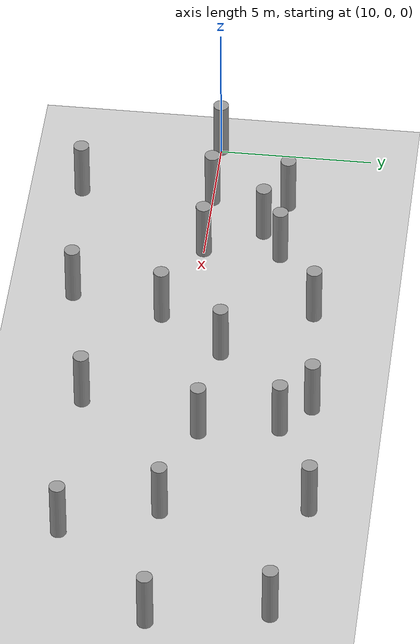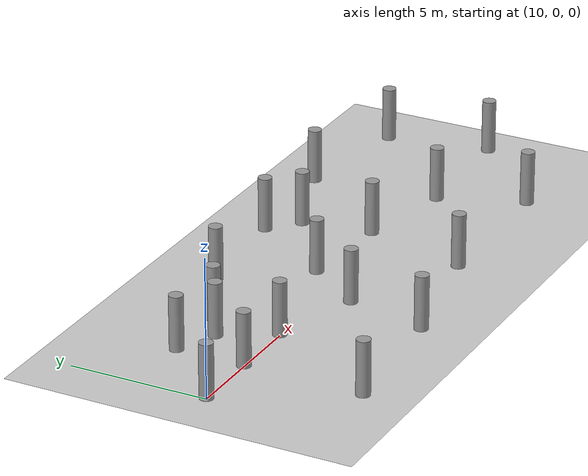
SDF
<sdf version="1.6">
 <world name="default">
  <model name="ground_plane">
   <static>1</static>
   <link name="link">
    <collision name="collision">
     <geometry><plane><normal>0 0 1</normal><size>100 100</size></plane></geometry>
     <surface><friction><ode><mu>100</mu><mu2>50</mu2></ode></friction></surface>
    </collision>
    <visual name="visual">
     <cast_shadows>0</cast_shadows>
     <geometry><plane><normal>0 0 1</normal><size>100 100</size></plane></geometry>
     <material>
      <script><uri>file://media/materials/scripts/gazebo.material</uri><name>Gazebo/Grey</name></script>
     </material>
    </visual>
   </link>
  </model>
  <model name="vps_sim_obstacle_3">
   <link name="link">
    <inertial>
     <mass>1</mass>
     <inertia><ixx>0.145833</ixx><ixy>0</ixy><ixz>0</ixz><iyy>0.145833</iyy><iyz>0</iyz><izz>0.125</izz></inertia>
    </inertial>
    <visual name="visual">
     <geometry><cylinder><radius>0.25</radius><length>2</length></cylinder></geometry>
     <material>
      <script><name>Gazebo/Grey</name><uri>file://media/materials/scripts/gazebo.material</uri></script>
      <ambient>0.3 0.3 0.3 1</ambient>
      <diffuse>0.7 0.7 0.7 1</diffuse>
      <specular>0.01 0.01 0.01 1</specular>
      <emissive>0 0 0 1</emissive>
      <shader type="vertex"><normal_map>__default__</normal_map></shader>
     </material>
    </visual>
    <collision name="collision">
     <geometry><cylinder><radius>0.25</radius><length>2</length></cylinder></geometry>
     <surface>
      <friction>
       <ode><mu>1</mu><mu2>1</mu2><fdir1>0 0 0</fdir1><slip1>0</slip1><slip2>0</slip2></ode>
       <torsional>
        <coefficient>1</coefficient>
        <patch_radius>0</patch_radius>
        <surface_radius>0</surface_radius>
        <use_patch_radius>1</use_patch_radius>
        <ode><slip>0</slip></ode>
       </torsional>
      </friction>
      <bounce><restitution_coefficient>0</restitution_coefficient><threshold>1e+06</threshold></bounce>
      <contact>
       <collide_without_contact>0</collide_without_contact>
       <collide_without_contact_bitmask>1</collide_without_contact_bitmask>
       <collide_bitmask>1</collide_bitmask>
       <ode>
        <soft_cfm>0</soft_cfm>
        <soft_erp>0.2</soft_erp>
        <kp>1e+13</kp>
        <kd>1</kd>
        <max_vel>0.01</max_vel>
        <min_depth>0</min_depth>
       </ode>
       <bullet>
        <split_impulse>1</split_impulse>
        <split_impulse_penetration_threshold>-0.01</split_impulse_penetration_threshold>
        <soft_cfm>0</soft_cfm>
        <soft_erp>0.2</soft_erp>
        <kp>1e+13</kp>
        <kd>1</kd>
       </bullet>
      </contact>
     </surface>
    </collision>
   </link>
   <static>0</static>
   <pose>10.0017 -0.001874 1.05001 -4.7e-05 2e-05 0.041216</pose>
  </model>
  <model name="vps_sim_obstacle_4">
   <link name="link">
    <inertial>
     <mass>1</mass>
     <inertia><ixx>0.145833</ixx><ixy>0</ixy><ixz>0</ixz><iyy>0.145833</iyy><iyz>0</iyz><izz>0.125</izz></inertia>
    </inertial>
    <visual name="visual">
     <geometry><cylinder><radius>0.25</radius><length>2</length></cylinder></geometry>
     <material>
      <script><name>Gazebo/Grey</name><uri>file://media/materials/scripts/gazebo.material</uri></script>
      <ambient>0.3 0.3 0.3 1</ambient>
      <diffuse>0.7 0.7 0.7 1</diffuse>
      <specular>0.01 0.01 0.01 1</specular>
      <emissive>0 0 0 1</emissive>
      <shader type="vertex"><normal_map>__default__</normal_map></shader>
     </material>
    </visual>
    <collision name="collision">
     <geometry><cylinder><radius>0.25</radius><length>2</length></cylinder></geometry>
     <surface>
      <friction>
       <ode><mu>1</mu><mu2>1</mu2><fdir1>0 0 0</fdir1><slip1>0</slip1><slip2>0</slip2></ode>
       <torsional>
        <coefficient>1</coefficient>
        <patch_radius>0</patch_radius>
        <surface_radius>0</surface_radius>
        <use_patch_radius>1</use_patch_radius>
        <ode><slip>0</slip></ode>
       </torsional>
      </friction>
      <bounce><restitution_coefficient>0</restitution_coefficient><threshold>1e+06</threshold></bounce>
      <contact>
       <collide_without_contact>0</collide_without_contact>
       <collide_without_contact_bitmask>1</collide_without_contact_bitmask>
       <collide_bitmask>1</collide_bitmask>
       <ode>
        <soft_cfm>0</soft_cfm>
        <soft_erp>0.2</soft_erp>
        <kp>1e+13</kp>
        <kd>1</kd>
        <max_vel>0.01</max_vel>
        <min_depth>0</min_depth>
       </ode>
       <bullet>
        <split_impulse>1</split_impulse>
        <split_impulse_penetration_threshold>-0.01</split_impulse_penetration_threshold>
        <soft_cfm>0</soft_cfm>
        <soft_erp>0.2</soft_erp>
        <kp>1e+13</kp>
        <kd>1</kd>
       </bullet>
      </contact>
     </surface>
    </collision>
   </link>
   <static>0</static>
   <pose>12.5016 -0.00191 1.04997 -1.8e-05 8e-06 0.044598</pose>
  </model>
  <model name="vps_sim_obstacle_5">
   <link name="link">
    <inertial>
     <mass>1</mass>
     <inertia><ixx>0.145833</ixx><ixy>0</ixy><ixz>0</ixz><iyy>0.145833</iyy><iyz>0</iyz><izz>0.125</izz></inertia>
    </inertial>
    <visual name="visual">
     <geometry><cylinder><radius>0.25</radius><length>2</length></cylinder></geometry>
     <material>
      <script><name>Gazebo/Grey</name><uri>file://media/materials/scripts/gazebo.material</uri></script>
      <ambient>0.3 0.3 0.3 1</ambient>
      <diffuse>0.7 0.7 0.7 1</diffuse>
      <specular>0.01 0.01 0.01 1</specular>
      <emissive>0 0 0 1</emissive>
      <shader type="vertex"><normal_map>__default__</normal_map></shader>
     </material>
    </visual>
    <collision name="collision">
     <geometry><cylinder><radius>0.25</radius><length>2</length></cylinder></geometry>
     <surface>
      <friction>
       <ode><mu>1</mu><mu2>1</mu2><fdir1>0 0 0</fdir1><slip1>0</slip1><slip2>0</slip2></ode>
       <torsional>
        <coefficient>1</coefficient>
        <patch_radius>0</patch_radius>
        <surface_radius>0</surface_radius>
        <use_patch_radius>1</use_patch_radius>
        <ode><slip>0</slip></ode>
       </torsional>
      </friction>
      <bounce><restitution_coefficient>0</restitution_coefficient><threshold>1e+06</threshold></bounce>
      <contact>
       <collide_without_contact>0</collide_without_contact>
       <collide_without_contact_bitmask>1</collide_without_contact_bitmask>
       <collide_bitmask>1</collide_bitmask>
       <ode>
        <soft_cfm>0</soft_cfm>
        <soft_erp>0.2</soft_erp>
        <kp>1e+13</kp>
        <kd>1</kd>
        <max_vel>0.01</max_vel>
        <min_depth>0</min_depth>
       </ode>
       <bullet>
        <split_impulse>1</split_impulse>
        <split_impulse_penetration_threshold>-0.01</split_impulse_penetration_threshold>
        <soft_cfm>0</soft_cfm>
        <soft_erp>0.2</soft_erp>
        <kp>1e+13</kp>
        <kd>1</kd>
       </bullet>
      </contact>
     </surface>
    </collision>
   </link>
   <static>0</static>
   <pose>15.0022 -0.001932 1.04997 -1.8e-05 2.4e-05 0.028864</pose>
  </model>
  <model name="vps_sim_obstacle_9">
   <link name="link">
    <inertial>
     <mass>1</mass>
     <inertia><ixx>0.145833</ixx><ixy>0</ixy><ixz>0</ixz><iyy>0.145833</iyy><iyz>0</iyz><izz>0.125</izz></inertia>
    </inertial>
    <visual name="visual">
     <geometry><cylinder><radius>0.25</radius><length>2</length></cylinder></geometry>
     <material>
      <script><name>Gazebo/Grey</name><uri>file://media/materials/scripts/gazebo.material</uri></script>
      <ambient>0.3 0.3 0.3 1</ambient>
      <diffuse>0.7 0.7 0.7 1</diffuse>
      <specular>0.01 0.01 0.01 1</specular>
      <emissive>0 0 0 1</emissive>
      <shader type="vertex"><normal_map>__default__</normal_map></shader>
     </material>
    </visual>
    <collision name="collision">
     <geometry><cylinder><radius>0.25</radius><length>2</length></cylinder></geometry>
     <surface>
      <friction>
       <ode><mu>1</mu><mu2>1</mu2><fdir1>0 0 0</fdir1><slip1>0</slip1><slip2>0</slip2></ode>
       <torsional>
        <coefficient>1</coefficient>
        <patch_radius>0</patch_radius>
        <surface_radius>0</surface_radius>
        <use_patch_radius>1</use_patch_radius>
        <ode><slip>0</slip></ode>
       </torsional>
      </friction>
      <bounce><restitution_coefficient>0</restitution_coefficient><threshold>1e+06</threshold></bounce>
      <contact>
       <collide_without_contact>0</collide_without_contact>
       <collide_without_contact_bitmask>1</collide_without_contact_bitmask>
       <collide_bitmask>1</collide_bitmask>
       <ode>
        <soft_cfm>0</soft_cfm>
        <soft_erp>0.2</soft_erp>
        <kp>1e+13</kp>
        <kd>1</kd>
        <max_vel>0.01</max_vel>
        <min_depth>0</min_depth>
       </ode>
       <bullet>
        <split_impulse>1</split_impulse>
        <split_impulse_penetration_threshold>-0.01</split_impulse_penetration_threshold>
        <soft_cfm>0</soft_cfm>
        <soft_erp>0.2</soft_erp>
        <kp>1e+13</kp>
        <kd>1</kd>
       </bullet>
      </contact>
     </surface>
    </collision>
   </link>
   <static>0</static>
   <pose>12.5021 2.49773 1.04997 1.1e-05 -1e-05 0.038836</pose>
  </model>
  <model name="vps_sim_obstacle_10">
   <link name="link">
    <inertial>
     <mass>1</mass>
     <inertia><ixx>0.145833</ixx><ixy>0</ixy><ixz>0</ixz><iyy>0.145833</iyy><iyz>0</iyz><izz>0.125</izz></inertia>
    </inertial>
    <visual name="visual">
     <geometry><cylinder><radius>0.25</radius><length>2</length></cylinder></geometry>
     <material>
      <script><name>Gazebo/Grey</name><uri>file://media/materials/scripts/gazebo.material</uri></script>
      <ambient>0.3 0.3 0.3 1</ambient>
      <diffuse>0.7 0.7 0.7 1</diffuse>
      <specular>0.01 0.01 0.01 1</specular>
      <emissive>0 0 0 1</emissive>
      <shader type="vertex"><normal_map>__default__</normal_map></shader>
     </material>
    </visual>
    <collision name="collision">
     <geometry><cylinder><radius>0.25</radius><length>2</length></cylinder></geometry>
     <surface>
      <friction>
       <ode><mu>1</mu><mu2>1</mu2><fdir1>0 0 0</fdir1><slip1>0</slip1><slip2>0</slip2></ode>
       <torsional>
        <coefficient>1</coefficient>
        <patch_radius>0</patch_radius>
        <surface_radius>0</surface_radius>
        <use_patch_radius>1</use_patch_radius>
        <ode><slip>0</slip></ode>
       </torsional>
      </friction>
      <bounce><restitution_coefficient>0</restitution_coefficient><threshold>1e+06</threshold></bounce>
      <contact>
       <collide_without_contact>0</collide_without_contact>
       <collide_without_contact_bitmask>1</collide_without_contact_bitmask>
       <collide_bitmask>1</collide_bitmask>
       <ode>
        <soft_cfm>0</soft_cfm>
        <soft_erp>0.2</soft_erp>
        <kp>1e+13</kp>
        <kd>1</kd>
        <max_vel>0.01</max_vel>
        <min_depth>0</min_depth>
       </ode>
       <bullet>
        <split_impulse>1</split_impulse>
        <split_impulse_penetration_threshold>-0.01</split_impulse_penetration_threshold>
        <soft_cfm>0</soft_cfm>
        <soft_erp>0.2</soft_erp>
        <kp>1e+13</kp>
        <kd>1</kd>
       </bullet>
      </contact>
     </surface>
    </collision>
   </link>
   <static>0</static>
   <pose>15.0023 2.49798 1.05001 -1.3e-05 2.2e-05 0.044878</pose>
  </model>
  <model name="vps_sim_obstacle_28">
   <link name="link">
    <inertial>
     <mass>1</mass>
     <inertia><ixx>0.145833</ixx><ixy>0</ixy><ixz>0</ixz><iyy>0.145833</iyy><iyz>0</iyz><izz>0.125</izz></inertia>
    </inertial>
    <visual name="visual">
     <geometry><cylinder><radius>0.25</radius><length>2</length></cylinder></geometry>
     <material>
      <script><name>Gazebo/Grey</name><uri>file://media/materials/scripts/gazebo.material</uri></script>
      <ambient>0.3 0.3 0.3 1</ambient>
      <diffuse>0.7 0.7 0.7 1</diffuse>
      <specular>0.01 0.01 0.01 1</specular>
      <emissive>0 0 0 1</emissive>
      <shader type="vertex"><normal_map>__default__</normal_map></shader>
     </material>
    </visual>
    <collision name="collision">
     <geometry><cylinder><radius>0.25</radius><length>2</length></cylinder></geometry>
     <surface>
      <friction>
       <ode><mu>1</mu><mu2>1</mu2><fdir1>0 0 0</fdir1><slip1>0</slip1><slip2>0</slip2></ode>
       <torsional>
        <coefficient>1</coefficient>
        <patch_radius>0</patch_radius>
        <surface_radius>0</surface_radius>
        <use_patch_radius>1</use_patch_radius>
        <ode><slip>0</slip></ode>
       </torsional>
      </friction>
      <bounce><restitution_coefficient>0</restitution_coefficient><threshold>1e+06</threshold></bounce>
      <contact>
       <collide_without_contact>0</collide_without_contact>
       <collide_without_contact_bitmask>1</collide_without_contact_bitmask>
       <collide_bitmask>1</collide_bitmask>
       <ode>
        <soft_cfm>0</soft_cfm>
        <soft_erp>0.2</soft_erp>
        <kp>1e+13</kp>
        <kd>1</kd>
        <max_vel>0.01</max_vel>
        <min_depth>0</min_depth>
       </ode>
       <bullet>
        <split_impulse>1</split_impulse>
        <split_impulse_penetration_threshold>-0.01</split_impulse_penetration_threshold>
        <soft_cfm>0</soft_cfm>
        <soft_erp>0.2</soft_erp>
        <kp>1e+13</kp>
        <kd>1</kd>
       </bullet>
      </contact>
     </surface>
    </collision>
   </link>
   <static>0</static>
   <pose>22.9798 3.32238 1.04998 -7e-06 8e-06 0.045611</pose>
  </model>
  <model name="vps_sim_obstacle_30">
   <link name="link">
    <inertial>
     <mass>1</mass>
     <inertia><ixx>0.145833</ixx><ixy>0</ixy><ixz>0</ixz><iyy>0.145833</iyy><iyz>0</iyz><izz>0.125</izz></inertia>
    </inertial>
    <visual name="visual">
     <geometry><cylinder><radius>0.25</radius><length>2</length></cylinder></geometry>
     <material>
      <script><name>Gazebo/Grey</name><uri>file://media/materials/scripts/gazebo.material</uri></script>
      <ambient>0.3 0.3 0.3 1</ambient>
      <diffuse>0.7 0.7 0.7 1</diffuse>
      <specular>0.01 0.01 0.01 1</specular>
      <emissive>0 0 0 1</emissive>
      <shader type="vertex"><normal_map>__default__</normal_map></shader>
     </material>
    </visual>
    <collision name="collision">
     <geometry><cylinder><radius>0.25</radius><length>2</length></cylinder></geometry>
     <surface>
      <friction>
       <ode><mu>1</mu><mu2>1</mu2><fdir1>0 0 0</fdir1><slip1>0</slip1><slip2>0</slip2></ode>
       <torsional>
        <coefficient>1</coefficient>
        <patch_radius>0</patch_radius>
        <surface_radius>0</surface_radius>
        <use_patch_radius>1</use_patch_radius>
        <ode><slip>0</slip></ode>
       </torsional>
      </friction>
      <bounce><restitution_coefficient>0</restitution_coefficient><threshold>1e+06</threshold></bounce>
      <contact>
       <collide_without_contact>0</collide_without_contact>
       <collide_without_contact_bitmask>1</collide_without_contact_bitmask>
       <collide_bitmask>1</collide_bitmask>
       <ode>
        <soft_cfm>0</soft_cfm>
        <soft_erp>0.2</soft_erp>
        <kp>1e+13</kp>
        <kd>1</kd>
        <max_vel>0.01</max_vel>
        <min_depth>0</min_depth>
       </ode>
       <bullet>
        <split_impulse>1</split_impulse>
        <split_impulse_penetration_threshold>-0.01</split_impulse_penetration_threshold>
        <soft_cfm>0</soft_cfm>
        <soft_erp>0.2</soft_erp>
        <kp>1e+13</kp>
        <kd>1</kd>
       </bullet>
      </contact>
     </surface>
    </collision>
   </link>
   <static>0</static>
   <pose>21.9308 4.23909 1.04999 1.5e-05 -3.7e-05 0.047896</pose>
  </model>
  <model name="vps_sim_obstacle_31">
   <link name="link">
    <inertial>
     <mass>1</mass>
     <inertia><ixx>0.145833</ixx><ixy>0</ixy><ixz>0</ixz><iyy>0.145833</iyy><iyz>0</iyz><izz>0.125</izz></inertia>
    </inertial>
    <visual name="visual">
     <geometry><cylinder><radius>0.25</radius><length>2</length></cylinder></geometry>
     <material>
      <script><name>Gazebo/Grey</name><uri>file://media/materials/scripts/gazebo.material</uri></script>
      <ambient>0.3 0.3 0.3 1</ambient>
      <diffuse>0.7 0.7 0.7 1</diffuse>
      <specular>0.01 0.01 0.01 1</specular>
      <emissive>0 0 0 1</emissive>
      <shader type="vertex"><normal_map>__default__</normal_map></shader>
     </material>
    </visual>
    <collision name="collision">
     <geometry><cylinder><radius>0.25</radius><length>2</length></cylinder></geometry>
     <surface>
      <friction>
       <ode><mu>1</mu><mu2>1</mu2><fdir1>0 0 0</fdir1><slip1>0</slip1><slip2>0</slip2></ode>
       <torsional>
        <coefficient>1</coefficient>
        <patch_radius>0</patch_radius>
        <surface_radius>0</surface_radius>
        <use_patch_radius>1</use_patch_radius>
        <ode><slip>0</slip></ode>
       </torsional>
      </friction>
      <bounce><restitution_coefficient>0</restitution_coefficient><threshold>1e+06</threshold></bounce>
      <contact>
       <collide_without_contact>0</collide_without_contact>
       <collide_without_contact_bitmask>1</collide_without_contact_bitmask>
       <collide_bitmask>1</collide_bitmask>
       <ode>
        <soft_cfm>0</soft_cfm>
        <soft_erp>0.2</soft_erp>
        <kp>1e+13</kp>
        <kd>1</kd>
        <max_vel>0.01</max_vel>
        <min_depth>0</min_depth>
       </ode>
       <bullet>
        <split_impulse>1</split_impulse>
        <split_impulse_penetration_threshold>-0.01</split_impulse_penetration_threshold>
        <soft_cfm>0</soft_cfm>
        <soft_erp>0.2</soft_erp>
        <kp>1e+13</kp>
        <kd>1</kd>
       </bullet>
      </contact>
     </surface>
    </collision>
   </link>
   <static>0</static>
   <pose>17.6638 3.86548 1.04996 -5e-06 3e-06 0.044897</pose>
  </model>
  <model name="vps_sim_obstacle_33">
   <link name="link">
    <inertial>
     <mass>1</mass>
     <inertia><ixx>0.145833</ixx><ixy>0</ixy><ixz>0</ixz><iyy>0.145833</iyy><iyz>0</iyz><izz>0.125</izz></inertia>
    </inertial>
    <visual name="visual">
     <geometry><cylinder><radius>0.25</radius><length>2</length></cylinder></geometry>
     <material>
      <script><name>Gazebo/Grey</name><uri>file://media/materials/scripts/gazebo.material</uri></script>
      <ambient>0.3 0.3 0.3 1</ambient>
      <diffuse>0.7 0.7 0.7 1</diffuse>
      <specular>0.01 0.01 0.01 1</specular>
      <emissive>0 0 0 1</emissive>
      <shader type="vertex"><normal_map>__default__</normal_map></shader>
     </material>
    </visual>
    <collision name="collision">
     <geometry><cylinder><radius>0.25</radius><length>2</length></cylinder></geometry>
     <surface>
      <friction>
       <ode><mu>1</mu><mu2>1</mu2><fdir1>0 0 0</fdir1><slip1>0</slip1><slip2>0</slip2></ode>
       <torsional>
        <coefficient>1</coefficient>
        <patch_radius>0</patch_radius>
        <surface_radius>0</surface_radius>
        <use_patch_radius>1</use_patch_radius>
        <ode><slip>0</slip></ode>
       </torsional>
      </friction>
      <bounce><restitution_coefficient>0</restitution_coefficient><threshold>1e+06</threshold></bounce>
      <contact>
       <collide_without_contact>0</collide_without_contact>
       <collide_without_contact_bitmask>1</collide_without_contact_bitmask>
       <collide_bitmask>1</collide_bitmask>
       <ode>
        <soft_cfm>0</soft_cfm>
        <soft_erp>0.2</soft_erp>
        <kp>1e+13</kp>
        <kd>1</kd>
        <max_vel>0.01</max_vel>
        <min_depth>0</min_depth>
       </ode>
       <bullet>
        <split_impulse>1</split_impulse>
        <split_impulse_penetration_threshold>-0.01</split_impulse_penetration_threshold>
        <soft_cfm>0</soft_cfm>
        <soft_erp>0.2</soft_erp>
        <kp>1e+13</kp>
        <kd>1</kd>
       </bullet>
      </contact>
     </surface>
    </collision>
   </link>
   <static>0</static>
   <pose>18.2367 -0.987695 1.05 8e-06 9e-06 0.040185</pose>
  </model>
  <model name="vps_sim_obstacle_34">
   <link name="link">
    <inertial>
     <mass>1</mass>
     <inertia><ixx>0.145833</ixx><ixy>0</ixy><ixz>0</ixz><iyy>0.145833</iyy><iyz>0</iyz><izz>0.125</izz></inertia>
    </inertial>
    <visual name="visual">
     <geometry><cylinder><radius>0.25</radius><length>2</length></cylinder></geometry>
     <material>
      <script><name>Gazebo/Grey</name><uri>file://media/materials/scripts/gazebo.material</uri></script>
      <ambient>0.3 0.3 0.3 1</ambient>
      <diffuse>0.7 0.7 0.7 1</diffuse>
      <specular>0.01 0.01 0.01 1</specular>
      <emissive>0 0 0 1</emissive>
      <shader type="vertex"><normal_map>__default__</normal_map></shader>
     </material>
    </visual>
    <collision name="collision">
     <geometry><cylinder><radius>0.25</radius><length>2</length></cylinder></geometry>
     <surface>
      <friction>
       <ode><mu>1</mu><mu2>1</mu2><fdir1>0 0 0</fdir1><slip1>0</slip1><slip2>0</slip2></ode>
       <torsional>
        <coefficient>1</coefficient>
        <patch_radius>0</patch_radius>
        <surface_radius>0</surface_radius>
        <use_patch_radius>1</use_patch_radius>
        <ode><slip>0</slip></ode>
       </torsional>
      </friction>
      <bounce><restitution_coefficient>0</restitution_coefficient><threshold>1e+06</threshold></bounce>
      <contact>
       <collide_without_contact>0</collide_without_contact>
       <collide_without_contact_bitmask>1</collide_without_contact_bitmask>
       <collide_bitmask>1</collide_bitmask>
       <ode>
        <soft_cfm>0</soft_cfm>
        <soft_erp>0.2</soft_erp>
        <kp>1e+13</kp>
        <kd>1</kd>
        <max_vel>0.01</max_vel>
        <min_depth>0</min_depth>
       </ode>
       <bullet>
        <split_impulse>1</split_impulse>
        <split_impulse_penetration_threshold>-0.01</split_impulse_penetration_threshold>
        <soft_cfm>0</soft_cfm>
        <soft_erp>0.2</soft_erp>
        <kp>1e+13</kp>
        <kd>1</kd>
       </bullet>
      </contact>
     </surface>
    </collision>
   </link>
   <static>0</static>
   <pose>23.3934 0.797577 1.05001 -1.3e-05 1.7e-05 0.05502</pose>
  </model>
  <model name="vps_sim_obstacle_35">
   <link name="link">
    <inertial>
     <mass>1</mass>
     <inertia><ixx>0.145833</ixx><ixy>0</ixy><ixz>0</ixz><iyy>0.145833</iyy><iyz>0</iyz><izz>0.125</izz></inertia>
    </inertial>
    <visual name="visual">
     <geometry><cylinder><radius>0.25</radius><length>2</length></cylinder></geometry>
     <material>
      <script><name>Gazebo/Grey</name><uri>file://media/materials/scripts/gazebo.material</uri></script>
      <ambient>0.3 0.3 0.3 1</ambient>
      <diffuse>0.7 0.7 0.7 1</diffuse>
      <specular>0.01 0.01 0.01 1</specular>
      <emissive>0 0 0 1</emissive>
      <shader type="vertex"><normal_map>__default__</normal_map></shader>
     </material>
    </visual>
    <collision name="collision">
     <geometry><cylinder><radius>0.25</radius><length>2</length></cylinder></geometry>
     <surface>
      <friction>
       <ode><mu>1</mu><mu2>1</mu2><fdir1>0 0 0</fdir1><slip1>0</slip1><slip2>0</slip2></ode>
       <torsional>
        <coefficient>1</coefficient>
        <patch_radius>0</patch_radius>
        <surface_radius>0</surface_radius>
        <use_patch_radius>1</use_patch_radius>
        <ode><slip>0</slip></ode>
       </torsional>
      </friction>
      <bounce><restitution_coefficient>0</restitution_coefficient><threshold>1e+06</threshold></bounce>
      <contact>
       <collide_without_contact>0</collide_without_contact>
       <collide_without_contact_bitmask>1</collide_without_contact_bitmask>
       <collide_bitmask>1</collide_bitmask>
       <ode>
        <soft_cfm>0</soft_cfm>
        <soft_erp>0.2</soft_erp>
        <kp>1e+13</kp>
        <kd>1</kd>
        <max_vel>0.01</max_vel>
        <min_depth>0</min_depth>
       </ode>
       <bullet>
        <split_impulse>1</split_impulse>
        <split_impulse_penetration_threshold>-0.01</split_impulse_penetration_threshold>
        <soft_cfm>0</soft_cfm>
        <soft_erp>0.2</soft_erp>
        <kp>1e+13</kp>
        <kd>1</kd>
       </bullet>
      </contact>
     </surface>
    </collision>
   </link>
   <static>0</static>
   <pose>19.7645 1.09166 1.04998 8e-06 -1.5e-05 0.035573</pose>
  </model>
  <model name="vps_sim_obstacle_37">
   <link name="link">
    <inertial>
     <mass>1</mass>
     <inertia><ixx>0.145833</ixx><ixy>0</ixy><ixz>0</ixz><iyy>0.145833</iyy><iyz>0</iyz><izz>0.125</izz></inertia>
    </inertial>
    <visual name="visual">
     <geometry><cylinder><radius>0.25</radius><length>2</length></cylinder></geometry>
     <material>
      <script><name>Gazebo/Grey</name><uri>file://media/materials/scripts/gazebo.material</uri></script>
      <ambient>0.3 0.3 0.3 1</ambient>
      <diffuse>0.7 0.7 0.7 1</diffuse>
      <specular>0.01 0.01 0.01 1</specular>
      <emissive>0 0 0 1</emissive>
      <shader type="vertex"><normal_map>__default__</normal_map></shader>
     </material>
    </visual>
    <collision name="collision">
     <geometry><cylinder><radius>0.25</radius><length>2</length></cylinder></geometry>
     <surface>
      <friction>
       <ode><mu>1</mu><mu2>1</mu2><fdir1>0 0 0</fdir1><slip1>0</slip1><slip2>0</slip2></ode>
       <torsional>
        <coefficient>1</coefficient>
        <patch_radius>0</patch_radius>
        <surface_radius>0</surface_radius>
        <use_patch_radius>1</use_patch_radius>
        <ode><slip>0</slip></ode>
       </torsional>
      </friction>
      <bounce><restitution_coefficient>0</restitution_coefficient><threshold>1e+06</threshold></bounce>
      <contact>
       <collide_without_contact>0</collide_without_contact>
       <collide_without_contact_bitmask>1</collide_without_contact_bitmask>
       <collide_bitmask>1</collide_bitmask>
       <ode>
        <soft_cfm>0</soft_cfm>
        <soft_erp>0.2</soft_erp>
        <kp>1e+13</kp>
        <kd>1</kd>
        <max_vel>0.01</max_vel>
        <min_depth>0</min_depth>
       </ode>
       <bullet>
        <split_impulse>1</split_impulse>
        <split_impulse_penetration_threshold>-0.01</split_impulse_penetration_threshold>
        <soft_cfm>0</soft_cfm>
        <soft_erp>0.2</soft_erp>
        <kp>1e+13</kp>
        <kd>1</kd>
       </bullet>
      </contact>
     </surface>
    </collision>
   </link>
   <static>0</static>
   <pose>26.9966 0.017514 1.05002 -8.2e-05 3.9e-05 0.054837</pose>
  </model>
  <model name="vps_sim_obstacle_41">
   <link name="link">
    <inertial>
     <mass>1</mass>
     <inertia><ixx>0.145833</ixx><ixy>0</ixy><ixz>0</ixz><iyy>0.145833</iyy><iyz>0</iyz><izz>0.125</izz></inertia>
    </inertial>
    <visual name="visual">
     <geometry><cylinder><radius>0.25</radius><length>2</length></cylinder></geometry>
     <material>
      <script><name>Gazebo/Grey</name><uri>file://media/materials/scripts/gazebo.material</uri></script>
      <ambient>0.3 0.3 0.3 1</ambient>
      <diffuse>0.7 0.7 0.7 1</diffuse>
      <specular>0.01 0.01 0.01 1</specular>
      <emissive>0 0 0 1</emissive>
      <shader type="vertex"><normal_map>__default__</normal_map></shader>
     </material>
    </visual>
    <collision name="collision">
     <geometry><cylinder><radius>0.25</radius><length>2</length></cylinder></geometry>
     <surface>
      <friction>
       <ode><mu>1</mu><mu2>1</mu2><fdir1>0 0 0</fdir1><slip1>0</slip1><slip2>0</slip2></ode>
       <torsional>
        <coefficient>1</coefficient>
        <patch_radius>0</patch_radius>
        <surface_radius>0</surface_radius>
        <use_patch_radius>1</use_patch_radius>
        <ode><slip>0</slip></ode>
       </torsional>
      </friction>
      <bounce><restitution_coefficient>0</restitution_coefficient><threshold>1e+06</threshold></bounce>
      <contact>
       <collide_without_contact>0</collide_without_contact>
       <collide_without_contact_bitmask>1</collide_without_contact_bitmask>
       <collide_bitmask>1</collide_bitmask>
       <ode>
        <soft_cfm>0</soft_cfm>
        <soft_erp>0.2</soft_erp>
        <kp>1e+13</kp>
        <kd>1</kd>
        <max_vel>0.01</max_vel>
        <min_depth>0</min_depth>
       </ode>
       <bullet>
        <split_impulse>1</split_impulse>
        <split_impulse_penetration_threshold>-0.01</split_impulse_penetration_threshold>
        <soft_cfm>0</soft_cfm>
        <soft_erp>0.2</soft_erp>
        <kp>1e+13</kp>
        <kd>1</kd>
       </bullet>
      </contact>
     </surface>
    </collision>
   </link>
   <static>0</static>
   <pose>12.5078 -4.32531 1.04998 -1e-06 7e-06 0.043758</pose>
  </model>
  <model name="vps_sim_obstacle_43">
   <link name="link">
    <inertial>
     <mass>1</mass>
     <inertia><ixx>0.145833</ixx><ixy>0</ixy><ixz>0</ixz><iyy>0.145833</iyy><iyz>0</iyz><izz>0.125</izz></inertia>
    </inertial>
    <visual name="visual">
     <geometry><cylinder><radius>0.25</radius><length>2</length></cylinder></geometry>
     <material>
      <script><name>Gazebo/Grey</name><uri>file://media/materials/scripts/gazebo.material</uri></script>
      <ambient>0.3 0.3 0.3 1</ambient>
      <diffuse>0.7 0.7 0.7 1</diffuse>
      <specular>0.01 0.01 0.01 1</specular>
      <emissive>0 0 0 1</emissive>
      <shader type="vertex"><normal_map>__default__</normal_map></shader>
     </material>
    </visual>
    <collision name="collision">
     <geometry><cylinder><radius>0.25</radius><length>2</length></cylinder></geometry>
     <surface>
      <friction>
       <ode><mu>1</mu><mu2>1</mu2><fdir1>0 0 0</fdir1><slip1>0</slip1><slip2>0</slip2></ode>
       <torsional>
        <coefficient>1</coefficient>
        <patch_radius>0</patch_radius>
        <surface_radius>0</surface_radius>
        <use_patch_radius>1</use_patch_radius>
        <ode><slip>0</slip></ode>
       </torsional>
      </friction>
      <bounce><restitution_coefficient>0</restitution_coefficient><threshold>1e+06</threshold></bounce>
      <contact>
       <collide_without_contact>0</collide_without_contact>
       <collide_without_contact_bitmask>1</collide_without_contact_bitmask>
       <collide_bitmask>1</collide_bitmask>
       <ode>
        <soft_cfm>0</soft_cfm>
        <soft_erp>0.2</soft_erp>
        <kp>1e+13</kp>
        <kd>1</kd>
        <max_vel>0.01</max_vel>
        <min_depth>0</min_depth>
       </ode>
       <bullet>
        <split_impulse>1</split_impulse>
        <split_impulse_penetration_threshold>-0.01</split_impulse_penetration_threshold>
        <soft_cfm>0</soft_cfm>
        <soft_erp>0.2</soft_erp>
        <kp>1e+13</kp>
        <kd>1</kd>
       </bullet>
      </contact>
     </surface>
    </collision>
   </link>
   <static>0</static>
   <pose>17.5398 -3.95201 1.04999 -1.5e-05 -1.3e-05 0.043986</pose>
  </model>
  <model name="vps_sim_obstacle_44">
   <link name="link">
    <inertial>
     <mass>1</mass>
     <inertia><ixx>0.145833</ixx><ixy>0</ixy><ixz>0</ixz><iyy>0.145833</iyy><iyz>0</iyz><izz>0.125</izz></inertia>
    </inertial>
    <visual name="visual">
     <geometry><cylinder><radius>0.25</radius><length>2</length></cylinder></geometry>
     <material>
      <script><name>Gazebo/Grey</name><uri>file://media/materials/scripts/gazebo.material</uri></script>
      <ambient>0.3 0.3 0.3 1</ambient>
      <diffuse>0.7 0.7 0.7 1</diffuse>
      <specular>0.01 0.01 0.01 1</specular>
      <emissive>0 0 0 1</emissive>
      <shader type="vertex"><normal_map>__default__</normal_map></shader>
     </material>
    </visual>
    <collision name="collision">
     <geometry><cylinder><radius>0.25</radius><length>2</length></cylinder></geometry>
     <surface>
      <friction>
       <ode><mu>1</mu><mu2>1</mu2><fdir1>0 0 0</fdir1><slip1>0</slip1><slip2>0</slip2></ode>
       <torsional>
        <coefficient>1</coefficient>
        <patch_radius>0</patch_radius>
        <surface_radius>0</surface_radius>
        <use_patch_radius>1</use_patch_radius>
        <ode><slip>0</slip></ode>
       </torsional>
      </friction>
      <bounce><restitution_coefficient>0</restitution_coefficient><threshold>1e+06</threshold></bounce>
      <contact>
       <collide_without_contact>0</collide_without_contact>
       <collide_without_contact_bitmask>1</collide_without_contact_bitmask>
       <collide_bitmask>1</collide_bitmask>
       <ode>
        <soft_cfm>0</soft_cfm>
        <soft_erp>0.2</soft_erp>
        <kp>1e+13</kp>
        <kd>1</kd>
        <max_vel>0.01</max_vel>
        <min_depth>0</min_depth>
       </ode>
       <bullet>
        <split_impulse>1</split_impulse>
        <split_impulse_penetration_threshold>-0.01</split_impulse_penetration_threshold>
        <soft_cfm>0</soft_cfm>
        <soft_erp>0.2</soft_erp>
        <kp>1e+13</kp>
        <kd>1</kd>
       </bullet>
      </contact>
     </surface>
    </collision>
   </link>
   <static>0</static>
   <pose>22.3742 -3.01928 1.04998 -7e-05 3.1e-05 0.067831</pose>
  </model>
  <model name="vps_sim_obstacle_46">
   <link name="link">
    <inertial>
     <mass>1</mass>
     <inertia><ixx>0.145833</ixx><ixy>0</ixy><ixz>0</ixz><iyy>0.145833</iyy><iyz>0</iyz><izz>0.125</izz></inertia>
    </inertial>
    <visual name="visual">
     <geometry><cylinder><radius>0.25</radius><length>2</length></cylinder></geometry>
     <material>
      <script><name>Gazebo/Grey</name><uri>file://media/materials/scripts/gazebo.material</uri></script>
      <ambient>0.3 0.3 0.3 1</ambient>
      <diffuse>0.7 0.7 0.7 1</diffuse>
      <specular>0.01 0.01 0.01 1</specular>
      <emissive>0 0 0 1</emissive>
      <shader type="vertex"><normal_map>__default__</normal_map></shader>
     </material>
    </visual>
    <collision name="collision">
     <geometry><cylinder><radius>0.25</radius><length>2</length></cylinder></geometry>
     <surface>
      <friction>
       <ode><mu>1</mu><mu2>1</mu2><fdir1>0 0 0</fdir1><slip1>0</slip1><slip2>0</slip2></ode>
       <torsional>
        <coefficient>1</coefficient>
        <patch_radius>0</patch_radius>
        <surface_radius>0</surface_radius>
        <use_patch_radius>1</use_patch_radius>
        <ode><slip>0</slip></ode>
       </torsional>
      </friction>
      <bounce><restitution_coefficient>0</restitution_coefficient><threshold>1e+06</threshold></bounce>
      <contact>
       <collide_without_contact>0</collide_without_contact>
       <collide_without_contact_bitmask>1</collide_without_contact_bitmask>
       <collide_bitmask>1</collide_bitmask>
       <ode>
        <soft_cfm>0</soft_cfm>
        <soft_erp>0.2</soft_erp>
        <kp>1e+13</kp>
        <kd>1</kd>
        <max_vel>0.01</max_vel>
        <min_depth>0</min_depth>
       </ode>
       <bullet>
        <split_impulse>1</split_impulse>
        <split_impulse_penetration_threshold>-0.01</split_impulse_penetration_threshold>
        <soft_cfm>0</soft_cfm>
        <soft_erp>0.2</soft_erp>
        <kp>1e+13</kp>
        <kd>1</kd>
       </bullet>
      </contact>
     </surface>
    </collision>
   </link>
   <static>0</static>
   <pose>26.3967 4.59577 1.04999 5e-06 -1.3e-05 0.061338</pose>
  </model>
  <model name="vps_sim_obstacle_48">
   <link name="link">
    <inertial>
     <mass>1</mass>
     <inertia><ixx>0.145833</ixx><ixy>0</ixy><ixz>0</ixz><iyy>0.145833</iyy><iyz>0</iyz><izz>0.125</izz></inertia>
    </inertial>
    <visual name="visual">
     <geometry><cylinder><radius>0.25</radius><length>2</length></cylinder></geometry>
     <material>
      <script><name>Gazebo/Grey</name><uri>file://media/materials/scripts/gazebo.material</uri></script>
      <ambient>0.3 0.3 0.3 1</ambient>
      <diffuse>0.7 0.7 0.7 1</diffuse>
      <specular>0.01 0.01 0.01 1</specular>
      <emissive>0 0 0 1</emissive>
      <shader type="vertex"><normal_map>__default__</normal_map></shader>
     </material>
    </visual>
    <collision name="collision">
     <geometry><cylinder><radius>0.25</radius><length>2</length></cylinder></geometry>
     <surface>
      <friction>
       <ode><mu>1</mu><mu2>1</mu2><fdir1>0 0 0</fdir1><slip1>0</slip1><slip2>0</slip2></ode>
       <torsional>
        <coefficient>1</coefficient>
        <patch_radius>0</patch_radius>
        <surface_radius>0</surface_radius>
        <use_patch_radius>1</use_patch_radius>
        <ode><slip>0</slip></ode>
       </torsional>
      </friction>
      <bounce><restitution_coefficient>0</restitution_coefficient><threshold>1e+06</threshold></bounce>
      <contact>
       <collide_without_contact>0</collide_without_contact>
       <collide_without_contact_bitmask>1</collide_without_contact_bitmask>
       <collide_bitmask>1</collide_bitmask>
       <ode>
        <soft_cfm>0</soft_cfm>
        <soft_erp>0.2</soft_erp>
        <kp>1e+13</kp>
        <kd>1</kd>
        <max_vel>0.01</max_vel>
        <min_depth>0</min_depth>
       </ode>
       <bullet>
        <split_impulse>1</split_impulse>
        <split_impulse_penetration_threshold>-0.01</split_impulse_penetration_threshold>
        <soft_cfm>0</soft_cfm>
        <soft_erp>0.2</soft_erp>
        <kp>1e+13</kp>
        <kd>1</kd>
       </bullet>
      </contact>
     </surface>
    </collision>
   </link>
   <static>0</static>
   <pose>28.1517 -2.98242 1.04996 7e-06 -3e-06 0.057442</pose>
  </model>
  <model name="vps_sim_obstacle_50">
   <link name="link">
    <inertial>
     <mass>1</mass>
     <inertia><ixx>0.145833</ixx><ixy>0</ixy><ixz>0</ixz><iyy>0.145833</iyy><iyz>0</iyz><izz>0.125</izz></inertia>
    </inertial>
    <visual name="visual">
     <geometry><cylinder><radius>0.25</radius><length>2</length></cylinder></geometry>
     <material>
      <script><name>Gazebo/Grey</name><uri>file://media/materials/scripts/gazebo.material</uri></script>
      <ambient>0.3 0.3 0.3 1</ambient>
      <diffuse>0.7 0.7 0.7 1</diffuse>
      <specular>0.01 0.01 0.01 1</specular>
      <emissive>0 0 0 1</emissive>
      <shader type="vertex"><normal_map>__default__</normal_map></shader>
     </material>
    </visual>
    <collision name="collision">
     <geometry><cylinder><radius>0.25</radius><length>2</length></cylinder></geometry>
     <surface>
      <friction>
       <ode><mu>1</mu><mu2>1</mu2><fdir1>0 0 0</fdir1><slip1>0</slip1><slip2>0</slip2></ode>
       <torsional>
        <coefficient>1</coefficient>
        <patch_radius>0</patch_radius>
        <surface_radius>0</surface_radius>
        <use_patch_radius>1</use_patch_radius>
        <ode><slip>0</slip></ode>
       </torsional>
      </friction>
      <bounce><restitution_coefficient>0</restitution_coefficient><threshold>1e+06</threshold></bounce>
      <contact>
       <collide_without_contact>0</collide_without_contact>
       <collide_without_contact_bitmask>1</collide_without_contact_bitmask>
       <collide_bitmask>1</collide_bitmask>
       <ode>
        <soft_cfm>0</soft_cfm>
        <soft_erp>0.2</soft_erp>
        <kp>1e+13</kp>
        <kd>1</kd>
        <max_vel>0.01</max_vel>
        <min_depth>0</min_depth>
       </ode>
       <bullet>
        <split_impulse>1</split_impulse>
        <split_impulse_penetration_threshold>-0.01</split_impulse_penetration_threshold>
        <soft_cfm>0</soft_cfm>
        <soft_erp>0.2</soft_erp>
        <kp>1e+13</kp>
        <kd>1</kd>
       </bullet>
      </contact>
     </surface>
    </collision>
   </link>
   <static>0</static>
   <pose>30.9799 3.87415 1.04999 -2.2e-05 1.3e-05 -0.0295</pose>
  </model>
  <model name="vps_sim_obstacle_51">
   <link name="link">
    <inertial>
     <mass>1</mass>
     <inertia><ixx>0.145833</ixx><ixy>0</ixy><ixz>0</ixz><iyy>0.145833</iyy><iyz>0</iyz><izz>0.125</izz></inertia>
    </inertial>
    <visual name="visual">
     <geometry><cylinder><radius>0.25</radius><length>2</length></cylinder></geometry>
     <material>
      <script><name>Gazebo/Grey</name><uri>file://media/materials/scripts/gazebo.material</uri></script>
      <ambient>0.3 0.3 0.3 1</ambient>
      <diffuse>0.7 0.7 0.7 1</diffuse>
      <specular>0.01 0.01 0.01 1</specular>
      <emissive>0 0 0 1</emissive>
      <shader type="vertex"><normal_map>__default__</normal_map></shader>
     </material>
    </visual>
    <collision name="collision">
     <geometry><cylinder><radius>0.25</radius><length>2</length></cylinder></geometry>
     <surface>
      <friction>
       <ode><mu>1</mu><mu2>1</mu2><fdir1>0 0 0</fdir1><slip1>0</slip1><slip2>0</slip2></ode>
       <torsional>
        <coefficient>1</coefficient>
        <patch_radius>0</patch_radius>
        <surface_radius>0</surface_radius>
        <use_patch_radius>1</use_patch_radius>
        <ode><slip>0</slip></ode>
       </torsional>
      </friction>
      <bounce><restitution_coefficient>0</restitution_coefficient><threshold>1e+06</threshold></bounce>
      <contact>
       <collide_without_contact>0</collide_without_contact>
       <collide_without_contact_bitmask>1</collide_without_contact_bitmask>
       <collide_bitmask>1</collide_bitmask>
       <ode>
        <soft_cfm>0</soft_cfm>
        <soft_erp>0.2</soft_erp>
        <kp>1e+13</kp>
        <kd>1</kd>
        <max_vel>0.01</max_vel>
        <min_depth>0</min_depth>
       </ode>
       <bullet>
        <split_impulse>1</split_impulse>
        <split_impulse_penetration_threshold>-0.01</split_impulse_penetration_threshold>
        <soft_cfm>0</soft_cfm>
        <soft_erp>0.2</soft_erp>
        <kp>1e+13</kp>
        <kd>1</kd>
       </bullet>
      </contact>
     </surface>
    </collision>
   </link>
   <static>0</static>
   <pose>31.6493 0.142161 1.04999 1e-05 -5e-06 -0.017247</pose>
  </model>
  <model name="vps_sim_obstacle_56">
   <link name="link">
    <inertial>
     <mass>1</mass>
     <inertia><ixx>0.145833</ixx><ixy>0</ixy><ixz>0</ixz><iyy>0.145833</iyy><iyz>0</iyz><izz>0.125</izz></inertia>
    </inertial>
    <visual name="visual">
     <geometry><cylinder><radius>0.25</radius><length>2</length></cylinder></geometry>
     <material>
      <script><name>Gazebo/Grey</name><uri>file://media/materials/scripts/gazebo.material</uri></script>
      <ambient>0.3 0.3 0.3 1</ambient>
      <diffuse>0.7 0.7 0.7 1</diffuse>
      <specular>0.01 0.01 0.01 1</specular>
      <emissive>0 0 0 1</emissive>
      <shader type="vertex"><normal_map>__default__</normal_map></shader>
     </material>
    </visual>
    <collision name="collision">
     <geometry><cylinder><radius>0.25</radius><length>2</length></cylinder></geometry>
     <surface>
      <friction>
       <ode><mu>1</mu><mu2>1</mu2><fdir1>0 0 0</fdir1><slip1>0</slip1><slip2>0</slip2></ode>
       <torsional>
        <coefficient>1</coefficient>
        <patch_radius>0</patch_radius>
        <surface_radius>0</surface_radius>
        <use_patch_radius>1</use_patch_radius>
        <ode><slip>0</slip></ode>
       </torsional>
      </friction>
      <bounce><restitution_coefficient>0</restitution_coefficient><threshold>1e+06</threshold></bounce>
      <contact>
       <collide_without_contact>0</collide_without_contact>
       <collide_without_contact_bitmask>1</collide_without_contact_bitmask>
       <collide_bitmask>1</collide_bitmask>
       <ode>
        <soft_cfm>0</soft_cfm>
        <soft_erp>0.2</soft_erp>
        <kp>1e+13</kp>
        <kd>1</kd>
        <max_vel>0.01</max_vel>
        <min_depth>0</min_depth>
       </ode>
       <bullet>
        <split_impulse>1</split_impulse>
        <split_impulse_penetration_threshold>-0.01</split_impulse_penetration_threshold>
        <soft_cfm>0</soft_cfm>
        <soft_erp>0.2</soft_erp>
        <kp>1e+13</kp>
        <kd>1</kd>
       </bullet>
      </contact>
     </surface>
    </collision>
   </link>
   <static>0</static>
   <pose>13.9459 1.84287 1.05 -4e-06 -1.8e-05 0.055405</pose>
  </model>
 </world>
</sdf>
